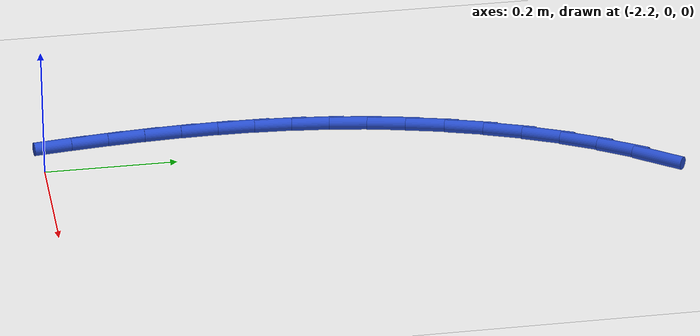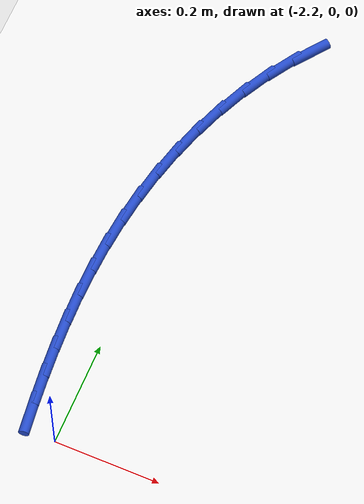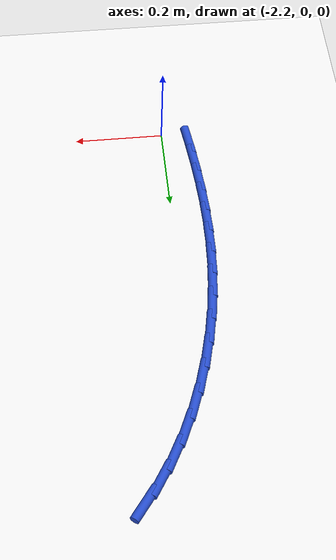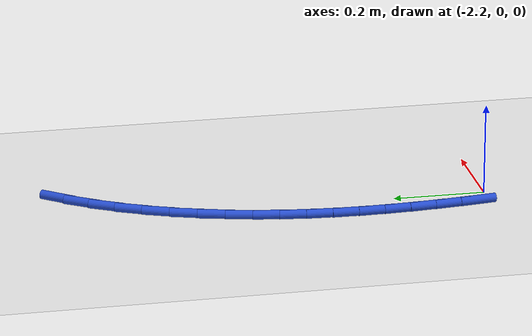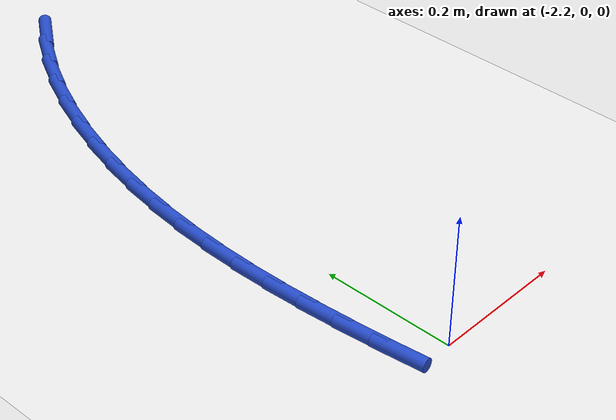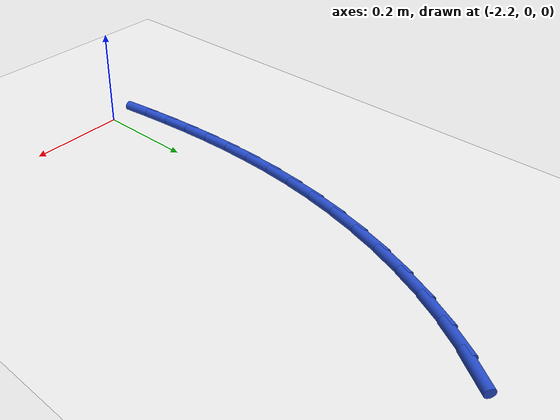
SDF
<sdf version="1.6">
 <world name="default">
  <model name="ground_plane">
   <static>1</static>
   <link name="link">
    <collision name="collision">
     <geometry><plane><normal>0 0 1</normal><size>100 100</size></plane></geometry>
     <surface><friction><ode><mu>100</mu><mu2>50</mu2></ode></friction></surface>
    </collision>
    <visual name="visual">
     <cast_shadows>0</cast_shadows>
     <geometry><plane><normal>0 0 1</normal><size>100 100</size></plane></geometry>
     <material>
      <script><uri>file://media/materials/scripts/gazebo.material</uri><name>Gazebo/WhiteGlow</name></script>
     </material>
    </visual>
   </link>
  </model>
  <model name="line">
   <link name="link_49">
    <pose>-2.077816284081837 0.91200372717971 0.01 0 1.57 0.926810842268478</pose>
    <collision name="collision">
     <geometry><cylinder><radius>0.01</radius><length>0.08</length></cylinder></geometry>
    </collision>
    <visual name="visual">
     <material>
      <script><name>Gazebo/Blue</name><uri>file://media/materials/scripts/gazebo.material</uri></script>
     </material>
     <geometry><cylinder><radius>0.01</radius><length>0.08</length></cylinder></geometry>
    </visual>
   </link>
   <link name="link_50">
    <pose>-2.112784094697848 0.8654269981040001 0.01 0 1.57 1.011424378445572</pose>
    <collision name="collision">
     <geometry><cylinder><radius>0.01</radius><length>0.08</length></cylinder></geometry>
    </collision>
    <visual name="visual">
     <material>
      <script><name>Gazebo/Blue</name><uri>file://media/materials/scripts/gazebo.material</uri></script>
     </material>
     <geometry><cylinder><radius>0.01</radius><length>0.08</length></cylinder></geometry>
    </visual>
   </link>
   <link name="link_51">
    <pose>-2.144078430151562 0.8154420324863946 0.01 0 1.57 1.0872285184530974</pose>
    <collision name="collision">
     <geometry><cylinder><radius>0.01</radius><length>0.08</length></cylinder></geometry>
    </collision>
    <visual name="visual">
     <material>
      <script><name>Gazebo/Blue</name><uri>file://media/materials/scripts/gazebo.material</uri></script>
     </material>
     <geometry><cylinder><radius>0.01</radius><length>0.08</length></cylinder></geometry>
    </visual>
   </link>
   <link name="link_52">
    <pose>-2.17177216038596 0.7627075503591685 0.01 0 1.57 1.1556344954637883</pose>
    <collision name="collision">
     <geometry><cylinder><radius>0.01</radius><length>0.08</length></cylinder></geometry>
    </collision>
    <visual name="visual">
     <material>
      <script><name>Gazebo/Blue</name><uri>file://media/materials/scripts/gazebo.material</uri></script>
     </material>
     <geometry><cylinder><radius>0.01</radius><length>0.08</length></cylinder></geometry>
    </visual>
   </link>
   <link name="link_53">
    <pose>-2.1959381553440225 0.7078822717545951 0.01 0 1.57 1.2180448632623677</pose>
    <collision name="collision">
     <geometry><cylinder><radius>0.01</radius><length>0.08</length></cylinder></geometry>
    </collision>
    <visual name="visual">
     <material>
      <script><name>Gazebo/Blue</name><uri>file://media/materials/scripts/gazebo.material</uri></script>
     </material>
     <geometry><cylinder><radius>0.01</radius><length>0.08</length></cylinder></geometry>
    </visual>
   </link>
   <link name="link_54">
    <pose>-2.216649284968731 0.6516249167049487 0.01 0 1.57 1.2758055162855544</pose>
    <collision name="collision">
     <geometry><cylinder><radius>0.01</radius><length>0.08</length></cylinder></geometry>
    </collision>
    <visual name="visual">
     <material>
      <script><name>Gazebo/Blue</name><uri>file://media/materials/scripts/gazebo.material</uri></script>
     </material>
     <geometry><cylinder><radius>0.01</radius><length>0.08</length></cylinder></geometry>
    </visual>
   </link>
   <link name="link_55">
    <pose>-2.2339784192030687 0.5945942052425042 0.01 0 1.57 1.3302099351774619</pose>
    <collision name="collision">
     <geometry><cylinder><radius>0.01</radius><length>0.08</length></cylinder></geometry>
    </collision>
    <visual name="visual">
     <material>
      <script><name>Gazebo/Blue</name><uri>file://media/materials/scripts/gazebo.material</uri></script>
     </material>
     <geometry><cylinder><radius>0.01</radius><length>0.08</length></cylinder></geometry>
    </visual>
   </link>
   <link name="link_56">
    <pose>-2.247999672478881 0.537443514736304 0.01 0 1.57 1.3823221379774542</pose>
    <collision name="collision">
     <geometry><cylinder><radius>0.01</radius><length>0.08</length></cylinder></geometry>
    </collision>
    <visual name="visual">
     <material>
      <script><name>Gazebo/Blue</name><uri>file://media/materials/scripts/gazebo.material</uri></script>
     </material>
     <geometry><cylinder><radius>0.01</radius><length>0.08</length></cylinder></geometry>
    </visual>
   </link>
   <link name="link_57">
    <pose>-2.258851113806619 0.4805516618221489 0.01 0 1.57 1.4320227253490998</pose>
    <collision name="collision">
     <geometry><cylinder><radius>0.01</radius><length>0.08</length></cylinder></geometry>
    </collision>
    <visual name="visual">
     <material>
      <script><name>Gazebo/Blue</name><uri>file://media/materials/scripts/gazebo.material</uri></script>
     </material>
     <geometry><cylinder><radius>0.01</radius><length>0.08</length></cylinder></geometry>
    </visual>
   </link>
   <link name="link_58">
    <pose>-2.2667642274977995 0.4238964258040919 0.01 0 1.57 1.4787351495475614</pose>
    <collision name="collision">
     <geometry><cylinder><radius>0.01</radius><length>0.08</length></cylinder></geometry>
    </collision>
    <visual name="visual">
     <material>
      <script><name>Gazebo/Blue</name><uri>file://media/materials/scripts/gazebo.material</uri></script>
     </material>
     <geometry><cylinder><radius>0.01</radius><length>0.08</length></cylinder></geometry>
    </visual>
   </link>
   <link name="link_59">
    <pose>-2.271977900937419 0.36742380416027615 0.01 0 1.57 1.521972456552878</pose>
    <collision name="collision">
     <geometry><cylinder><radius>0.01</radius><length>0.08</length></cylinder></geometry>
    </collision>
    <visual name="visual">
     <material>
      <script><name>Gazebo/Blue</name><uri>file://media/materials/scripts/gazebo.material</uri></script>
     </material>
     <geometry><cylinder><radius>0.01</radius><length>0.08</length></cylinder></geometry>
    </visual>
   </link>
   <link name="link_60">
    <pose>-2.2747310215104757 0.31107979436884514 0.01 0 1.57 1.561351774601533</pose>
    <collision name="collision">
     <geometry><cylinder><radius>0.01</radius><length>0.08</length></cylinder></geometry>
    </collision>
    <visual name="visual">
     <material>
      <script><name>Gazebo/Blue</name><uri>file://media/materials/scripts/gazebo.material</uri></script>
     </material>
     <geometry><cylinder><radius>0.01</radius><length>0.08</length></cylinder></geometry>
    </visual>
   </link>
   <link name="link_61">
    <pose>-2.2752624766019665 0.25481039390794125 0.01 0 1.57 -1.5450001990259408</pose>
    <collision name="collision">
     <geometry><cylinder><radius>0.01</radius><length>0.08</length></cylinder></geometry>
    </collision>
    <visual name="visual">
     <material>
      <script><name>Gazebo/Blue</name><uri>file://media/materials/scripts/gazebo.material</uri></script>
     </material>
     <geometry><cylinder><radius>0.01</radius><length>0.08</length></cylinder></geometry>
    </visual>
   </link>
   <link name="link_62">
    <pose>-2.2738111535968875 0.19856160025570685 0.01 0 1.57 -1.514085888372616</pose>
    <collision name="collision">
     <geometry><cylinder><radius>0.01</radius><length>0.08</length></cylinder></geometry>
    </collision>
    <visual name="visual">
     <material>
      <script><name>Gazebo/Blue</name><uri>file://media/materials/scripts/gazebo.material</uri></script>
     </material>
     <geometry><cylinder><radius>0.01</radius><length>0.08</length></cylinder></geometry>
    </visual>
   </link>
   <link name="link_63">
    <pose>-2.270615939880238 0.1422794108902854 0.01 0 1.57 -1.4876066215418753</pose>
    <collision name="collision">
     <geometry><cylinder><radius>0.01</radius><length>0.08</length></cylinder></geometry>
    </collision>
    <visual name="visual">
     <material>
      <script><name>Gazebo/Blue</name><uri>file://media/materials/scripts/gazebo.material</uri></script>
     </material>
     <geometry><cylinder><radius>0.01</radius><length>0.08</length></cylinder></geometry>
    </visual>
   </link>
   <link name="link_64">
    <pose>-2.265915722837015 0.08590982328982023 0.01 0 1.57 -1.4656077290107865</pose>
    <collision name="collision">
     <geometry><cylinder><radius>0.01</radius><length>0.08</length></cylinder></geometry>
    </collision>
    <visual name="visual">
     <material>
      <script><name>Gazebo/Blue</name><uri>file://media/materials/scripts/gazebo.material</uri></script>
     </material>
     <geometry><cylinder><radius>0.01</radius><length>0.08</length></cylinder></geometry>
    </visual>
   </link>
   <link name="link_65">
    <pose>-2.2599493898522143 0.029398834932453793 0.01 0 1.57 -1.448086632042188</pose>
    <collision name="collision">
     <geometry><cylinder><radius>0.01</radius><length>0.08</length></cylinder></geometry>
    </collision>
    <visual name="visual">
     <material>
      <script><name>Gazebo/Blue</name><uri>file://media/materials/scripts/gazebo.material</uri></script>
     </material>
     <geometry><cylinder><radius>0.01</radius><length>0.08</length></cylinder></geometry>
    </visual>
   </link>
  </model>
 </world>
</sdf>
